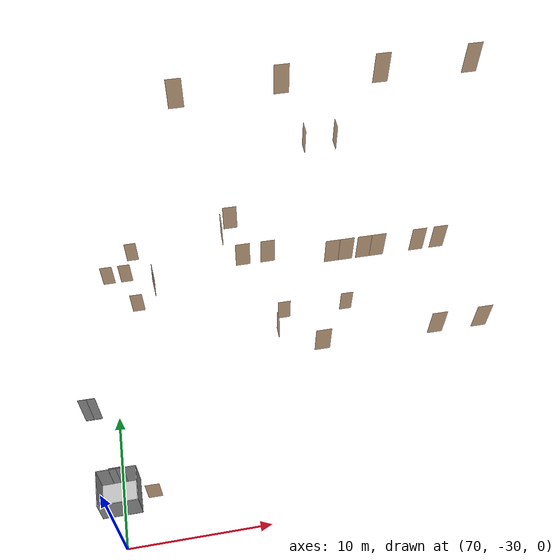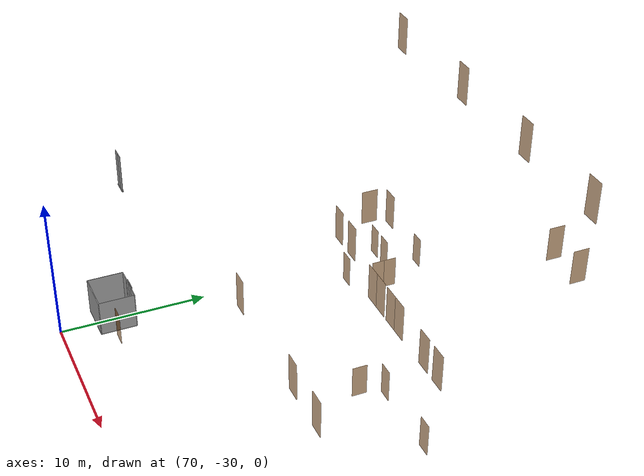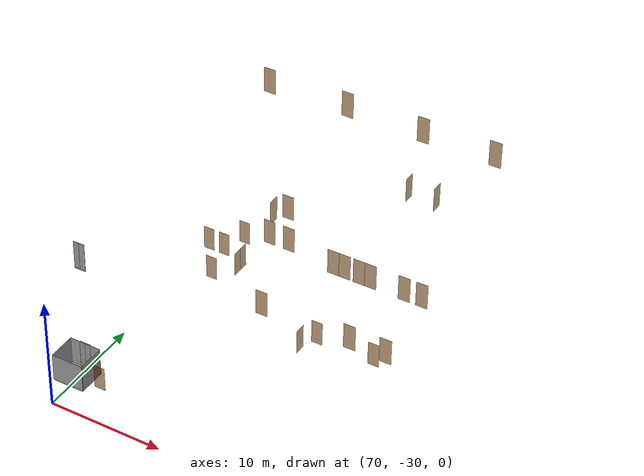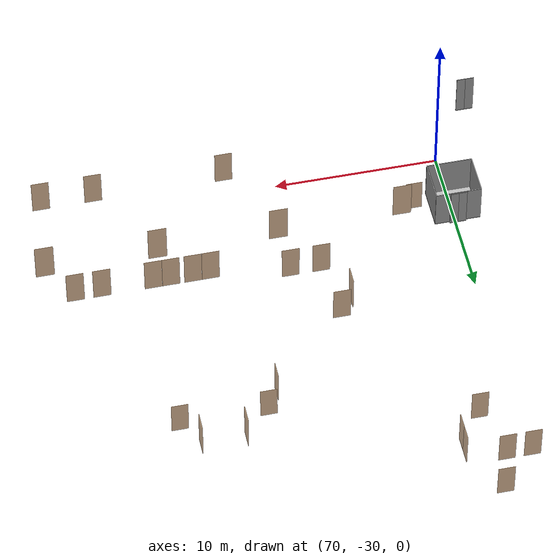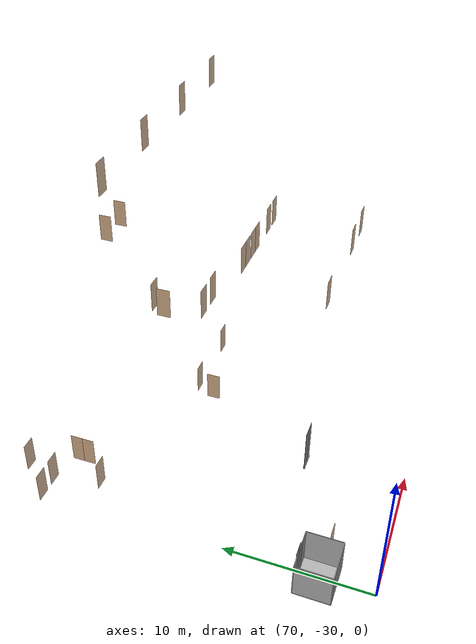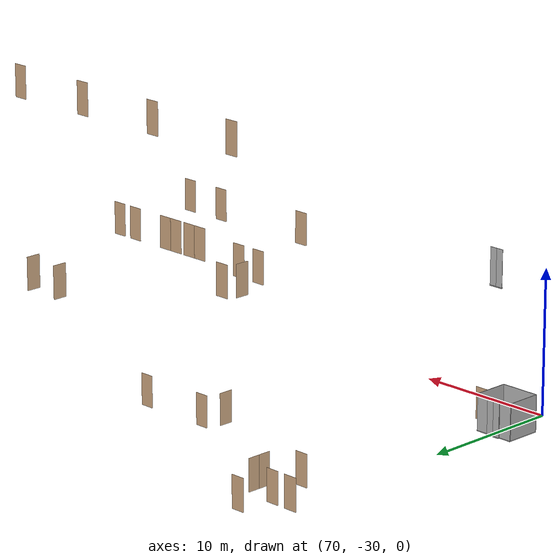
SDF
<sdf version="1.7">
 <world name="world">
  <include><uri>model://sun</uri></include>
  <model name="l1_door10">
   <pose>69.9 -7.0 0.0 0 0 0.0</pose>
   <plugin name="door" filename="libdoor.so">
    <v_max_door>0.5</v_max_door>
    <a_max_door>0.3</a_max_door>
    <a_nom_door>0.15</a_nom_door>
    <dx_min_door>0.01</dx_min_door>
    <f_max_door>500.0</f_max_door>
    <door name="l1_door10" type="SwingDoor" left_joint_name="left_joint" right_joint_name="empty_joint"/>
   </plugin>
   <link name="left">
    <pose>0 0 1.11 0 0 0</pose>
    <visual name="left_visual">
     <geometry><box><size>0.99 0.03 2.2</size></box></geometry>
     <material><ambient>0.5 0.25 0 0.6</ambient><diffuse>0.5 0.25 0 0.6</diffuse></material>
    </visual>
    <collision name="left_collision">
     <geometry><box><size>0.99 0.03 2.2</size></box></geometry>
     <surface><contact><collide_bitmask>0x02</collide_bitmask></contact></surface>
    </collision>
    <inertial>
     <mass>50.0</mass>
     <inertia><ixx>20.17041666666667</ixx><iyy>24.250416666666673</iyy><izz>4.0875</izz></inertia>
    </inertial>
   </link>
   <joint name="left_joint" type="revolute">
    <parent>world</parent>
    <child>left</child>
    <axis><xyz>0 0 1</xyz><limit><lower>-1.57</lower><upper>0</upper></limit></axis>
    <pose>0.5 0 0 0 0 0</pose>
   </joint>
  </model>
  <model name="l1_door9">
   <pose>72.05 -4.75 0.0 0 0 0.0</pose>
   <plugin name="door" filename="libdoor.so">
    <v_max_door>0.5</v_max_door>
    <a_max_door>0.3</a_max_door>
    <a_nom_door>0.15</a_nom_door>
    <dx_min_door>0.01</dx_min_door>
    <f_max_door>500.0</f_max_door>
    <door name="l1_door9" type="SwingDoor" left_joint_name="left_joint" right_joint_name="empty_joint"/>
   </plugin>
   <link name="left">
    <pose>0 0 1.11 0 0 0</pose>
    <visual name="left_visual">
     <geometry><box><size>0.99 0.03 2.2</size></box></geometry>
     <material><ambient>0.5 0.25 0 0.6</ambient><diffuse>0.5 0.25 0 0.6</diffuse></material>
    </visual>
    <collision name="left_collision">
     <geometry><box><size>0.99 0.03 2.2</size></box></geometry>
     <surface><contact><collide_bitmask>0x02</collide_bitmask></contact></surface>
    </collision>
    <inertial>
     <mass>50.0</mass>
     <inertia><ixx>20.17041666666667</ixx><iyy>24.250416666666673</iyy><izz>4.0875</izz></inertia>
    </inertial>
   </link>
   <joint name="left_joint" type="revolute">
    <parent>world</parent>
    <child>left</child>
    <axis><xyz>0 0 1</xyz><limit><lower>-1.57</lower><upper>0</upper></limit></axis>
    <pose>0.5 0 0 0 0 0</pose>
   </joint>
  </model>
  <model name="l1_door8">
   <pose>71.4 -7.0 0.0 0 0 3.141592653589793</pose>
   <plugin name="door" filename="libdoor.so">
    <v_max_door>0.5</v_max_door>
    <a_max_door>0.3</a_max_door>
    <a_nom_door>0.15</a_nom_door>
    <dx_min_door>0.01</dx_min_door>
    <f_max_door>500.0</f_max_door>
    <door name="l1_door8" type="SwingDoor" left_joint_name="empty_joint" right_joint_name="right_joint"/>
   </plugin>
   <link name="right">
    <pose>0 0 1.11 0 0 0</pose>
    <visual name="right_visual">
     <geometry><box><size>0.99 0.03 2.2</size></box></geometry>
     <material><ambient>0.5 0.25 0 0.6</ambient><diffuse>0.5 0.25 0 0.6</diffuse></material>
    </visual>
    <collision name="right_collision">
     <geometry><box><size>0.99 0.03 2.2</size></box></geometry>
     <surface><contact><collide_bitmask>0x02</collide_bitmask></contact></surface>
    </collision>
    <inertial>
     <mass>50.0</mass>
     <inertia><ixx>20.17041666666667</ixx><iyy>24.250416666666673</iyy><izz>4.0875</izz></inertia>
    </inertial>
   </link>
   <joint name="right_joint" type="revolute">
    <parent>world</parent>
    <child>right</child>
    <axis><xyz>0 0 1</xyz><limit><lower>0</lower><upper>1.57</upper></limit></axis>
    <pose>0.5 0 0 0 0 0</pose>
   </joint>
  </model>
  <model name="l1_door6">
   <pose>72.2 -10.25 0.0 0 0 3.141592653589793</pose>
   <plugin name="door" filename="libdoor.so">
    <v_max_door>0.5</v_max_door>
    <a_max_door>0.3</a_max_door>
    <a_nom_door>0.15</a_nom_door>
    <dx_min_door>0.01</dx_min_door>
    <f_max_door>500.0</f_max_door>
    <door name="l1_door6" type="SwingDoor" left_joint_name="empty_joint" right_joint_name="right_joint"/>
   </plugin>
   <link name="right">
    <pose>0 0 1.11 0 0 0</pose>
    <visual name="right_visual">
     <geometry><box><size>0.99 0.03 2.2</size></box></geometry>
     <material><ambient>0.5 0.25 0 0.6</ambient><diffuse>0.5 0.25 0 0.6</diffuse></material>
    </visual>
    <collision name="right_collision">
     <geometry><box><size>0.99 0.03 2.2</size></box></geometry>
     <surface><contact><collide_bitmask>0x02</collide_bitmask></contact></surface>
    </collision>
    <inertial>
     <mass>50.0</mass>
     <inertia><ixx>20.17041666666667</ixx><iyy>24.250416666666673</iyy><izz>4.0875</izz></inertia>
    </inertial>
   </link>
   <joint name="right_joint" type="revolute">
    <parent>world</parent>
    <child>right</child>
    <axis><xyz>0 0 1</xyz><limit><lower>0</lower><upper>1.57</upper></limit></axis>
    <pose>0.5 0 0 0 0 0</pose>
   </joint>
  </model>
  <model name="l1_door7">
   <pose>73.7 -8.125 0.0 0 0 -1.5707963267948966</pose>
   <link name="right">
    <pose>-0.4375 0 1.11 0 0 0</pose>
    <visual name="right_visual">
     <geometry><box><size>0.865 0.03 2.2</size></box></geometry>
     <material><ambient>0.5 0.25 0 0.6</ambient><diffuse>0.5 0.25 0 0.6</diffuse></material>
    </visual>
    <collision name="right_collision">
     <geometry><box><size>0.865 0.03 2.2</size></box></geometry>
     <surface><contact><collide_bitmask>0x02</collide_bitmask></contact></surface>
    </collision>
    <inertial>
     <mass>50.0</mass>
     <inertia><ixx>20.17041666666667</ixx><iyy>23.284270833333338</iyy><izz>3.121354166666667</izz></inertia>
    </inertial>
   </link>
   <joint name="right_joint" type="revolute">
    <parent>world</parent>
    <child>right</child>
    <axis><xyz>0 0 1</xyz><limit><lower>0</lower><upper>1.57</upper></limit></axis>
    <pose>-0.4375 0 0 0 0 0</pose>
   </joint>
   <link name="left">
    <pose>0.4375 0 1.11 0 0 0</pose>
    <visual name="left_visual">
     <geometry><box><size>0.865 0.03 2.2</size></box></geometry>
     <material><ambient>0.5 0.25 0 0.6</ambient><diffuse>0.5 0.25 0 0.6</diffuse></material>
    </visual>
    <collision name="left_collision">
     <geometry><box><size>0.865 0.03 2.2</size></box></geometry>
     <surface><contact><collide_bitmask>0x02</collide_bitmask></contact></surface>
    </collision>
    <inertial>
     <mass>50.0</mass>
     <inertia><ixx>20.17041666666667</ixx><iyy>23.284270833333338</iyy><izz>3.121354166666667</izz></inertia>
    </inertial>
   </link>
   <joint name="left_joint" type="revolute">
    <parent>world</parent>
    <child>left</child>
    <axis><xyz>0 0 1</xyz><limit><lower>-1.57</lower><upper>0</upper></limit></axis>
    <pose>0.4375 0 0 0 0 0</pose>
   </joint>
   <plugin name="door" filename="libdoor.so">
    <v_max_door>0.5</v_max_door>
    <a_max_door>0.3</a_max_door>
    <a_nom_door>0.15</a_nom_door>
    <dx_min_door>0.01</dx_min_door>
    <f_max_door>500.0</f_max_door>
    <door name="l1_door7" type="DoubleSwingDoor" left_joint_name="left_joint" right_joint_name="right_joint"/>
   </plugin>
  </model>
  <model name="exit_1">
   <pose>72.2 -26.6 0.0 0 0 3.141592653589793</pose>
   <plugin name="door" filename="libdoor.so">
    <v_max_door>0.5</v_max_door>
    <a_max_door>0.3</a_max_door>
    <a_nom_door>0.15</a_nom_door>
    <dx_min_door>0.01</dx_min_door>
    <f_max_door>500.0</f_max_door>
    <door name="exit_1" type="SwingDoor" left_joint_name="left_joint" right_joint_name="empty_joint"/>
   </plugin>
   <link name="left">
    <pose>0 0 1.11 0 0 0</pose>
    <visual name="left_visual">
     <geometry><box><size>0.99 0.03 2.2</size></box></geometry>
     <material><ambient>0.5 0.25 0 0.6</ambient><diffuse>0.5 0.25 0 0.6</diffuse></material>
    </visual>
    <collision name="left_collision">
     <geometry><box><size>0.99 0.03 2.2</size></box></geometry>
     <surface><contact><collide_bitmask>0x02</collide_bitmask></contact></surface>
    </collision>
    <inertial>
     <mass>50.0</mass>
     <inertia><ixx>20.17041666666667</ixx><iyy>24.250416666666673</iyy><izz>4.0875</izz></inertia>
    </inertial>
   </link>
   <joint name="left_joint" type="revolute">
    <parent>world</parent>
    <child>left</child>
    <axis><xyz>0 0 1</xyz><limit><lower>-1.57</lower><upper>0</upper></limit></axis>
    <pose>0.5 0 0 0 0 0</pose>
   </joint>
  </model>
  <model name="restroom_2">
   <pose>84.0 -13.0 0.0 0 0 0.0</pose>
   <plugin name="door" filename="libdoor.so">
    <v_max_door>0.5</v_max_door>
    <a_max_door>0.3</a_max_door>
    <a_nom_door>0.15</a_nom_door>
    <dx_min_door>0.01</dx_min_door>
    <f_max_door>500.0</f_max_door>
    <door name="restroom_2" type="SwingDoor" left_joint_name="left_joint" right_joint_name="empty_joint"/>
   </plugin>
   <link name="left">
    <pose>0 0 1.11 0 0 0</pose>
    <visual name="left_visual">
     <geometry><box><size>0.99 0.03 2.2</size></box></geometry>
     <material><ambient>0.5 0.25 0 0.6</ambient><diffuse>0.5 0.25 0 0.6</diffuse></material>
    </visual>
    <collision name="left_collision">
     <geometry><box><size>0.99 0.03 2.2</size></box></geometry>
     <surface><contact><collide_bitmask>0x02</collide_bitmask></contact></surface>
    </collision>
    <inertial>
     <mass>50.0</mass>
     <inertia><ixx>20.17041666666667</ixx><iyy>24.250416666666673</iyy><izz>4.0875</izz></inertia>
    </inertial>
   </link>
   <joint name="left_joint" type="revolute">
    <parent>world</parent>
    <child>left</child>
    <axis><xyz>0 0 1</xyz><limit><lower>-1.57</lower><upper>0</upper></limit></axis>
    <pose>0.5 0 0 0 0 0</pose>
   </joint>
  </model>
  <model name="restroom_3">
   <pose>83.25 -14.4 0.0 0 0 -1.5707963267948966</pose>
   <plugin name="door" filename="libdoor.so">
    <v_max_door>0.5</v_max_door>
    <a_max_door>0.3</a_max_door>
    <a_nom_door>0.15</a_nom_door>
    <dx_min_door>0.01</dx_min_door>
    <f_max_door>500.0</f_max_door>
    <door name="restroom_3" type="SwingDoor" left_joint_name="left_joint" right_joint_name="empty_joint"/>
   </plugin>
   <link name="left">
    <pose>0 0 1.11 0 0 0</pose>
    <visual name="left_visual">
     <geometry><box><size>0.99 0.03 2.2</size></box></geometry>
     <material><ambient>0.5 0.25 0 0.6</ambient><diffuse>0.5 0.25 0 0.6</diffuse></material>
    </visual>
    <collision name="left_collision">
     <geometry><box><size>0.99 0.03 2.2</size></box></geometry>
     <surface><contact><collide_bitmask>0x02</collide_bitmask></contact></surface>
    </collision>
    <inertial>
     <mass>50.0</mass>
     <inertia><ixx>20.17041666666667</ixx><iyy>24.250416666666673</iyy><izz>4.0875</izz></inertia>
    </inertial>
   </link>
   <joint name="left_joint" type="revolute">
    <parent>world</parent>
    <child>left</child>
    <axis><xyz>0 0 1</xyz><limit><lower>-1.57</lower><upper>0</upper></limit></axis>
    <pose>0.5 0 0 0 0 0</pose>
   </joint>
  </model>
  <model name="restroom_1">
   <pose>89.2 -13.0 0.0 0 0 0.0</pose>
   <plugin name="door" filename="libdoor.so">
    <v_max_door>0.5</v_max_door>
    <a_max_door>0.3</a_max_door>
    <a_nom_door>0.15</a_nom_door>
    <dx_min_door>0.01</dx_min_door>
    <f_max_door>500.0</f_max_door>
    <door name="restroom_1" type="SwingDoor" left_joint_name="left_joint" right_joint_name="empty_joint"/>
   </plugin>
   <link name="left">
    <pose>0 0 1.11 0 0 0</pose>
    <visual name="left_visual">
     <geometry><box><size>0.99 0.03 2.2</size></box></geometry>
     <material><ambient>0.5 0.25 0 0.6</ambient><diffuse>0.5 0.25 0 0.6</diffuse></material>
    </visual>
    <collision name="left_collision">
     <geometry><box><size>0.99 0.03 2.2</size></box></geometry>
     <surface><contact><collide_bitmask>0x02</collide_bitmask></contact></surface>
    </collision>
    <inertial>
     <mass>50.0</mass>
     <inertia><ixx>20.17041666666667</ixx><iyy>24.250416666666673</iyy><izz>4.0875</izz></inertia>
    </inertial>
   </link>
   <joint name="left_joint" type="revolute">
    <parent>world</parent>
    <child>left</child>
    <axis><xyz>0 0 1</xyz><limit><lower>-1.57</lower><upper>0</upper></limit></axis>
    <pose>0.5 0 0 0 0 0</pose>
   </joint>
  </model>
  <model name="conf_restroom_door0">
   <pose>82.35 -14.75 10.0 0 0 0.0</pose>
   <plugin name="door" filename="libdoor.so">
    <v_max_door>0.5</v_max_door>
    <a_max_door>0.3</a_max_door>
    <a_nom_door>0.15</a_nom_door>
    <dx_min_door>0.01</dx_min_door>
    <f_max_door>500.0</f_max_door>
    <door name="conf_restroom_door0" type="SwingDoor" left_joint_name="empty_joint" right_joint_name="right_joint"/>
   </plugin>
   <link name="right">
    <pose>0 0 1.11 0 0 0</pose>
    <visual name="right_visual">
     <geometry><box><size>0.99 0.03 2.2</size></box></geometry>
     <material><ambient>0.5 0.25 0 0.6</ambient><diffuse>0.5 0.25 0 0.6</diffuse></material>
    </visual>
    <collision name="right_collision">
     <geometry><box><size>0.99 0.03 2.2</size></box></geometry>
     <surface><contact><collide_bitmask>0x02</collide_bitmask></contact></surface>
    </collision>
    <inertial>
     <mass>50.0</mass>
     <inertia><ixx>20.17041666666667</ixx><iyy>24.250416666666673</iyy><izz>4.0875</izz></inertia>
    </inertial>
   </link>
   <joint name="right_joint" type="revolute">
    <parent>world</parent>
    <child>right</child>
    <axis><xyz>0 0 1</xyz><limit><lower>0</lower><upper>1.57</upper></limit></axis>
    <pose>0.5 0 0 0 0 0</pose>
   </joint>
  </model>
  <model name="conf0_door0">
   <pose>87.25 -15.5 10.0 0 0 3.141592653589793</pose>
   <link name="right">
    <pose>-0.5 0 1.11 0 0 0</pose>
    <visual name="right_visual">
     <geometry><box><size>0.99 0.03 2.2</size></box></geometry>
     <material><ambient>0.5 0.25 0 0.6</ambient><diffuse>0.5 0.25 0 0.6</diffuse></material>
    </visual>
    <collision name="right_collision">
     <geometry><box><size>0.99 0.03 2.2</size></box></geometry>
     <surface><contact><collide_bitmask>0x02</collide_bitmask></contact></surface>
    </collision>
    <inertial>
     <mass>50.0</mass>
     <inertia><ixx>20.17041666666667</ixx><iyy>24.250416666666673</iyy><izz>4.0875</izz></inertia>
    </inertial>
   </link>
   <joint name="right_joint" type="revolute">
    <parent>world</parent>
    <child>right</child>
    <axis><xyz>0 0 1</xyz><limit><lower>0</lower><upper>1.57</upper></limit></axis>
    <pose>-0.5 0 0 0 0 0</pose>
   </joint>
   <link name="left">
    <pose>0.5 0 1.11 0 0 0</pose>
    <visual name="left_visual">
     <geometry><box><size>0.99 0.03 2.2</size></box></geometry>
     <material><ambient>0.5 0.25 0 0.6</ambient><diffuse>0.5 0.25 0 0.6</diffuse></material>
    </visual>
    <collision name="left_collision">
     <geometry><box><size>0.99 0.03 2.2</size></box></geometry>
     <surface><contact><collide_bitmask>0x02</collide_bitmask></contact></surface>
    </collision>
    <inertial>
     <mass>50.0</mass>
     <inertia><ixx>20.17041666666667</ixx><iyy>24.250416666666673</iyy><izz>4.0875</izz></inertia>
    </inertial>
   </link>
   <joint name="left_joint" type="revolute">
    <parent>world</parent>
    <child>left</child>
    <axis><xyz>0 0 1</xyz><limit><lower>-1.57</lower><upper>0</upper></limit></axis>
    <pose>0.5 0 0 0 0 0</pose>
   </joint>
   <plugin name="door" filename="libdoor.so">
    <v_max_door>0.5</v_max_door>
    <a_max_door>0.3</a_max_door>
    <a_nom_door>0.15</a_nom_door>
    <dx_min_door>0.01</dx_min_door>
    <f_max_door>500.0</f_max_door>
    <door name="conf0_door0" type="DoubleSwingDoor" left_joint_name="left_joint" right_joint_name="right_joint"/>
   </plugin>
  </model>
  <model name="conf0_door1">
   <pose>89.5 -15.5 10.0 0 0 3.141592653589793</pose>
   <link name="right">
    <pose>-0.5 0 1.11 0 0 0</pose>
    <visual name="right_visual">
     <geometry><box><size>0.99 0.03 2.2</size></box></geometry>
     <material><ambient>0.5 0.25 0 0.6</ambient><diffuse>0.5 0.25 0 0.6</diffuse></material>
    </visual>
    <collision name="right_collision">
     <geometry><box><size>0.99 0.03 2.2</size></box></geometry>
     <surface><contact><collide_bitmask>0x02</collide_bitmask></contact></surface>
    </collision>
    <inertial>
     <mass>50.0</mass>
     <inertia><ixx>20.17041666666667</ixx><iyy>24.250416666666673</iyy><izz>4.0875</izz></inertia>
    </inertial>
   </link>
   <joint name="right_joint" type="revolute">
    <parent>world</parent>
    <child>right</child>
    <axis><xyz>0 0 1</xyz><limit><lower>0</lower><upper>1.57</upper></limit></axis>
    <pose>-0.5 0 0 0 0 0</pose>
   </joint>
   <link name="left">
    <pose>0.5 0 1.11 0 0 0</pose>
    <visual name="left_visual">
     <geometry><box><size>0.99 0.03 2.2</size></box></geometry>
     <material><ambient>0.5 0.25 0 0.6</ambient><diffuse>0.5 0.25 0 0.6</diffuse></material>
    </visual>
    <collision name="left_collision">
     <geometry><box><size>0.99 0.03 2.2</size></box></geometry>
     <surface><contact><collide_bitmask>0x02</collide_bitmask></contact></surface>
    </collision>
    <inertial>
     <mass>50.0</mass>
     <inertia><ixx>20.17041666666667</ixx><iyy>24.250416666666673</iyy><izz>4.0875</izz></inertia>
    </inertial>
   </link>
   <joint name="left_joint" type="revolute">
    <parent>world</parent>
    <child>left</child>
    <axis><xyz>0 0 1</xyz><limit><lower>-1.57</lower><upper>0</upper></limit></axis>
    <pose>0.5 0 0 0 0 0</pose>
   </joint>
   <plugin name="door" filename="libdoor.so">
    <v_max_door>0.5</v_max_door>
    <a_max_door>0.3</a_max_door>
    <a_nom_door>0.15</a_nom_door>
    <dx_min_door>0.01</dx_min_door>
    <f_max_door>500.0</f_max_door>
    <door name="conf0_door1" type="DoubleSwingDoor" left_joint_name="left_joint" right_joint_name="right_joint"/>
   </plugin>
  </model>
  <model name="meeting1_side">
   <pose>92.9 -15.5 10.0 0 0 0.0</pose>
   <plugin name="door" filename="libdoor.so">
    <v_max_door>0.5</v_max_door>
    <a_max_door>0.3</a_max_door>
    <a_nom_door>0.15</a_nom_door>
    <dx_min_door>0.01</dx_min_door>
    <f_max_door>500.0</f_max_door>
    <door name="meeting1_side" type="SwingDoor" left_joint_name="left_joint" right_joint_name="empty_joint"/>
   </plugin>
   <link name="left">
    <pose>0 0 1.11 0 0 0</pose>
    <visual name="left_visual">
     <geometry><box><size>0.99 0.03 2.2</size></box></geometry>
     <material><ambient>0.5 0.25 0 0.6</ambient><diffuse>0.5 0.25 0 0.6</diffuse></material>
    </visual>
    <collision name="left_collision">
     <geometry><box><size>0.99 0.03 2.2</size></box></geometry>
     <surface><contact><collide_bitmask>0x02</collide_bitmask></contact></surface>
    </collision>
    <inertial>
     <mass>50.0</mass>
     <inertia><ixx>20.17041666666667</ixx><iyy>24.250416666666673</iyy><izz>4.0875</izz></inertia>
    </inertial>
   </link>
   <joint name="left_joint" type="revolute">
    <parent>world</parent>
    <child>left</child>
    <axis><xyz>0 0 1</xyz><limit><lower>-1.57</lower><upper>0</upper></limit></axis>
    <pose>0.5 0 0 0 0 0</pose>
   </joint>
  </model>
  <model name="conf0_back0">
   <pose>87.1 -4.0 10.0 0 0 -1.5707963267948966</pose>
   <plugin name="door" filename="libdoor.so">
    <v_max_door>0.5</v_max_door>
    <a_max_door>0.3</a_max_door>
    <a_nom_door>0.15</a_nom_door>
    <dx_min_door>0.01</dx_min_door>
    <f_max_door>500.0</f_max_door>
    <door name="conf0_back0" type="SwingDoor" left_joint_name="left_joint" right_joint_name="empty_joint"/>
   </plugin>
   <link name="left">
    <pose>0 0 1.11 0 0 0</pose>
    <visual name="left_visual">
     <geometry><box><size>0.99 0.03 2.2</size></box></geometry>
     <material><ambient>0.5 0.25 0 0.6</ambient><diffuse>0.5 0.25 0 0.6</diffuse></material>
    </visual>
    <collision name="left_collision">
     <geometry><box><size>0.99 0.03 2.2</size></box></geometry>
     <surface><contact><collide_bitmask>0x02</collide_bitmask></contact></surface>
    </collision>
    <inertial>
     <mass>50.0</mass>
     <inertia><ixx>20.17041666666667</ixx><iyy>24.250416666666673</iyy><izz>4.0875</izz></inertia>
    </inertial>
   </link>
   <joint name="left_joint" type="revolute">
    <parent>world</parent>
    <child>left</child>
    <axis><xyz>0 0 1</xyz><limit><lower>-1.57</lower><upper>0</upper></limit></axis>
    <pose>0.5 0 0 0 0 0</pose>
   </joint>
  </model>
  <model name="conf0_back1">
   <pose>89.6 -4.0 10.0 0 0 -1.5707963267948966</pose>
   <plugin name="door" filename="libdoor.so">
    <v_max_door>0.5</v_max_door>
    <a_max_door>0.3</a_max_door>
    <a_nom_door>0.15</a_nom_door>
    <dx_min_door>0.01</dx_min_door>
    <f_max_door>500.0</f_max_door>
    <door name="conf0_back1" type="SwingDoor" left_joint_name="left_joint" right_joint_name="empty_joint"/>
   </plugin>
   <link name="left">
    <pose>0 0 1.11 0 0 0</pose>
    <visual name="left_visual">
     <geometry><box><size>0.99 0.03 2.2</size></box></geometry>
     <material><ambient>0.5 0.25 0 0.6</ambient><diffuse>0.5 0.25 0 0.6</diffuse></material>
    </visual>
    <collision name="left_collision">
     <geometry><box><size>0.99 0.03 2.2</size></box></geometry>
     <surface><contact><collide_bitmask>0x02</collide_bitmask></contact></surface>
    </collision>
    <inertial>
     <mass>50.0</mass>
     <inertia><ixx>20.17041666666667</ixx><iyy>24.250416666666673</iyy><izz>4.0875</izz></inertia>
    </inertial>
   </link>
   <joint name="left_joint" type="revolute">
    <parent>world</parent>
    <child>left</child>
    <axis><xyz>0 0 1</xyz><limit><lower>-1.57</lower><upper>0</upper></limit></axis>
    <pose>0.5 0 0 0 0 0</pose>
   </joint>
  </model>
  <model name="conf1_side">
   <pose>94.4 -15.5 10.0 0 0 3.141592653589793</pose>
   <plugin name="door" filename="libdoor.so">
    <v_max_door>0.5</v_max_door>
    <a_max_door>0.3</a_max_door>
    <a_nom_door>0.15</a_nom_door>
    <dx_min_door>0.01</dx_min_door>
    <f_max_door>500.0</f_max_door>
    <door name="conf1_side" type="SwingDoor" left_joint_name="empty_joint" right_joint_name="right_joint"/>
   </plugin>
   <link name="right">
    <pose>0 0 1.11 0 0 0</pose>
    <visual name="right_visual">
     <geometry><box><size>0.99 0.03 2.2</size></box></geometry>
     <material><ambient>0.5 0.25 0 0.6</ambient><diffuse>0.5 0.25 0 0.6</diffuse></material>
    </visual>
    <collision name="right_collision">
     <geometry><box><size>0.99 0.03 2.2</size></box></geometry>
     <surface><contact><collide_bitmask>0x02</collide_bitmask></contact></surface>
    </collision>
    <inertial>
     <mass>50.0</mass>
     <inertia><ixx>20.17041666666667</ixx><iyy>24.250416666666673</iyy><izz>4.0875</izz></inertia>
    </inertial>
   </link>
   <joint name="right_joint" type="revolute">
    <parent>world</parent>
    <child>right</child>
    <axis><xyz>0 0 1</xyz><limit><lower>0</lower><upper>1.57</upper></limit></axis>
    <pose>0.5 0 0 0 0 0</pose>
   </joint>
  </model>
  <model name="conf_meeting0_door0">
   <pose>84.6 -22.5 10.0 0 0 0.0</pose>
   <plugin name="door" filename="libdoor.so">
    <v_max_door>0.5</v_max_door>
    <a_max_door>0.3</a_max_door>
    <a_nom_door>0.15</a_nom_door>
    <dx_min_door>0.01</dx_min_door>
    <f_max_door>500.0</f_max_door>
    <door name="conf_meeting0_door0" type="SwingDoor" left_joint_name="left_joint" right_joint_name="empty_joint"/>
   </plugin>
   <link name="left">
    <pose>0 0 1.11 0 0 0</pose>
    <visual name="left_visual">
     <geometry><box><size>0.99 0.03 2.2</size></box></geometry>
     <material><ambient>0.5 0.25 0 0.6</ambient><diffuse>0.5 0.25 0 0.6</diffuse></material>
    </visual>
    <collision name="left_collision">
     <geometry><box><size>0.99 0.03 2.2</size></box></geometry>
     <surface><contact><collide_bitmask>0x02</collide_bitmask></contact></surface>
    </collision>
    <inertial>
     <mass>50.0</mass>
     <inertia><ixx>20.17041666666667</ixx><iyy>24.250416666666673</iyy><izz>4.0875</izz></inertia>
    </inertial>
   </link>
   <joint name="left_joint" type="revolute">
    <parent>world</parent>
    <child>left</child>
    <axis><xyz>0 0 1</xyz><limit><lower>-1.57</lower><upper>0</upper></limit></axis>
    <pose>0.5 0 0 0 0 0</pose>
   </joint>
  </model>
  <model name="conf_meeting0_door1">
   <pose>92.15 -22.5 10.0 0 0 3.141592653589793</pose>
   <plugin name="door" filename="libdoor.so">
    <v_max_door>0.5</v_max_door>
    <a_max_door>0.3</a_max_door>
    <a_nom_door>0.15</a_nom_door>
    <dx_min_door>0.01</dx_min_door>
    <f_max_door>500.0</f_max_door>
    <door name="conf_meeting0_door1" type="SwingDoor" left_joint_name="empty_joint" right_joint_name="right_joint"/>
   </plugin>
   <link name="right">
    <pose>0 0 1.11 0 0 0</pose>
    <visual name="right_visual">
     <geometry><box><size>0.99 0.03 2.2</size></box></geometry>
     <material><ambient>0.5 0.25 0 0.6</ambient><diffuse>0.5 0.25 0 0.6</diffuse></material>
    </visual>
    <collision name="right_collision">
     <geometry><box><size>0.99 0.03 2.2</size></box></geometry>
     <surface><contact><collide_bitmask>0x02</collide_bitmask></contact></surface>
    </collision>
    <inertial>
     <mass>50.0</mass>
     <inertia><ixx>20.17041666666667</ixx><iyy>24.250416666666673</iyy><izz>4.0875</izz></inertia>
    </inertial>
   </link>
   <joint name="right_joint" type="revolute">
    <parent>world</parent>
    <child>right</child>
    <axis><xyz>0 0 1</xyz><limit><lower>0</lower><upper>1.57</upper></limit></axis>
    <pose>0.5 0 0 0 0 0</pose>
   </joint>
  </model>
  <model name="conf_meeting1_door0">
   <pose>95.15 -22.5 10.0 0 0 0.0</pose>
   <plugin name="door" filename="libdoor.so">
    <v_max_door>0.5</v_max_door>
    <a_max_door>0.3</a_max_door>
    <a_nom_door>0.15</a_nom_door>
    <dx_min_door>0.01</dx_min_door>
    <f_max_door>500.0</f_max_door>
    <door name="conf_meeting1_door0" type="SwingDoor" left_joint_name="left_joint" right_joint_name="empty_joint"/>
   </plugin>
   <link name="left">
    <pose>0 0 1.11 0 0 0</pose>
    <visual name="left_visual">
     <geometry><box><size>0.99 0.03 2.2</size></box></geometry>
     <material><ambient>0.5 0.25 0 0.6</ambient><diffuse>0.5 0.25 0 0.6</diffuse></material>
    </visual>
    <collision name="left_collision">
     <geometry><box><size>0.99 0.03 2.2</size></box></geometry>
     <surface><contact><collide_bitmask>0x02</collide_bitmask></contact></surface>
    </collision>
    <inertial>
     <mass>50.0</mass>
     <inertia><ixx>20.17041666666667</ixx><iyy>24.250416666666673</iyy><izz>4.0875</izz></inertia>
    </inertial>
   </link>
   <joint name="left_joint" type="revolute">
    <parent>world</parent>
    <child>left</child>
    <axis><xyz>0 0 1</xyz><limit><lower>-1.57</lower><upper>0</upper></limit></axis>
    <pose>0.5 0 0 0 0 0</pose>
   </joint>
  </model>
  <model name="conf_restroom_door1">
   <pose>80.6 -14.75 10.0 0 0 0.0</pose>
   <plugin name="door" filename="libdoor.so">
    <v_max_door>0.5</v_max_door>
    <a_max_door>0.3</a_max_door>
    <a_nom_door>0.15</a_nom_door>
    <dx_min_door>0.01</dx_min_door>
    <f_max_door>500.0</f_max_door>
    <door name="conf_restroom_door1" type="SwingDoor" left_joint_name="empty_joint" right_joint_name="right_joint"/>
   </plugin>
   <link name="right">
    <pose>0 0 1.11 0 0 0</pose>
    <visual name="right_visual">
     <geometry><box><size>0.99 0.03 2.2</size></box></geometry>
     <material><ambient>0.5 0.25 0 0.6</ambient><diffuse>0.5 0.25 0 0.6</diffuse></material>
    </visual>
    <collision name="right_collision">
     <geometry><box><size>0.99 0.03 2.2</size></box></geometry>
     <surface><contact><collide_bitmask>0x02</collide_bitmask></contact></surface>
    </collision>
    <inertial>
     <mass>50.0</mass>
     <inertia><ixx>20.17041666666667</ixx><iyy>24.250416666666673</iyy><izz>4.0875</izz></inertia>
    </inertial>
   </link>
   <joint name="right_joint" type="revolute">
    <parent>world</parent>
    <child>right</child>
    <axis><xyz>0 0 1</xyz><limit><lower>0</lower><upper>1.57</upper></limit></axis>
    <pose>0.5 0 0 0 0 0</pose>
   </joint>
  </model>
  <model name="conf_restroom_door2">
   <pose>79.45 -12.25 10.0 0 0 -1.5707963267948966</pose>
   <plugin name="door" filename="libdoor.so">
    <v_max_door>0.5</v_max_door>
    <a_max_door>0.3</a_max_door>
    <a_nom_door>0.15</a_nom_door>
    <dx_min_door>0.01</dx_min_door>
    <f_max_door>500.0</f_max_door>
    <door name="conf_restroom_door2" type="SwingDoor" left_joint_name="empty_joint" right_joint_name="right_joint"/>
   </plugin>
   <link name="right">
    <pose>0 0 1.11 0 0 0</pose>
    <visual name="right_visual">
     <geometry><box><size>0.99 0.03 2.2</size></box></geometry>
     <material><ambient>0.5 0.25 0 0.6</ambient><diffuse>0.5 0.25 0 0.6</diffuse></material>
    </visual>
    <collision name="right_collision">
     <geometry><box><size>0.99 0.03 2.2</size></box></geometry>
     <surface><contact><collide_bitmask>0x02</collide_bitmask></contact></surface>
    </collision>
    <inertial>
     <mass>50.0</mass>
     <inertia><ixx>20.17041666666667</ixx><iyy>24.250416666666673</iyy><izz>4.0875</izz></inertia>
    </inertial>
   </link>
   <joint name="right_joint" type="revolute">
    <parent>world</parent>
    <child>right</child>
    <axis><xyz>0 0 1</xyz><limit><lower>0</lower><upper>1.57</upper></limit></axis>
    <pose>0.5 0 0 0 0 0</pose>
   </joint>
  </model>
  <model name="conf_restroom_door3">
   <pose>80.2 -11.25 10.0 0 0 3.141592653589793</pose>
   <plugin name="door" filename="libdoor.so">
    <v_max_door>0.5</v_max_door>
    <a_max_door>0.3</a_max_door>
    <a_nom_door>0.15</a_nom_door>
    <dx_min_door>0.01</dx_min_door>
    <f_max_door>500.0</f_max_door>
    <door name="conf_restroom_door3" type="SwingDoor" left_joint_name="empty_joint" right_joint_name="right_joint"/>
   </plugin>
   <link name="right">
    <pose>0 0 1.11 0 0 0</pose>
    <visual name="right_visual">
     <geometry><box><size>0.99 0.03 2.2</size></box></geometry>
     <material><ambient>0.5 0.25 0 0.6</ambient><diffuse>0.5 0.25 0 0.6</diffuse></material>
    </visual>
    <collision name="right_collision">
     <geometry><box><size>0.99 0.03 2.2</size></box></geometry>
     <surface><contact><collide_bitmask>0x02</collide_bitmask></contact></surface>
    </collision>
    <inertial>
     <mass>50.0</mass>
     <inertia><ixx>20.17041666666667</ixx><iyy>24.250416666666673</iyy><izz>4.0875</izz></inertia>
    </inertial>
   </link>
   <joint name="right_joint" type="revolute">
    <parent>world</parent>
    <child>right</child>
    <axis><xyz>0 0 1</xyz><limit><lower>0</lower><upper>1.57</upper></limit></axis>
    <pose>0.5 0 0 0 0 0</pose>
   </joint>
  </model>
  <model name="room24_door">
   <pose>77.45 -9.5 20.0 0 0 3.141592653589793</pose>
   <plugin name="door" filename="libdoor.so">
    <v_max_door>0.5</v_max_door>
    <a_max_door>0.3</a_max_door>
    <a_nom_door>0.15</a_nom_door>
    <dx_min_door>0.01</dx_min_door>
    <f_max_door>500.0</f_max_door>
    <door name="room24_door" type="SwingDoor" left_joint_name="left_joint" right_joint_name="empty_joint"/>
   </plugin>
   <link name="left">
    <pose>0 0 1.11 0 0 0</pose>
    <visual name="left_visual">
     <geometry><box><size>0.99 0.03 2.2</size></box></geometry>
     <material><ambient>0.5 0.25 0 0.6</ambient><diffuse>0.5 0.25 0 0.6</diffuse></material>
    </visual>
    <collision name="left_collision">
     <geometry><box><size>0.99 0.03 2.2</size></box></geometry>
     <surface><contact><collide_bitmask>0x02</collide_bitmask></contact></surface>
    </collision>
    <inertial>
     <mass>50.0</mass>
     <inertia><ixx>20.17041666666667</ixx><iyy>24.250416666666673</iyy><izz>4.0875</izz></inertia>
    </inertial>
   </link>
   <joint name="left_joint" type="revolute">
    <parent>world</parent>
    <child>left</child>
    <axis><xyz>0 0 1</xyz><limit><lower>-1.57</lower><upper>0</upper></limit></axis>
    <pose>0.5 0 0 0 0 0</pose>
   </joint>
  </model>
  <model name="room25_door">
   <pose>84.2 -9.25 20.0 0 0 0.0</pose>
   <plugin name="door" filename="libdoor.so">
    <v_max_door>0.5</v_max_door>
    <a_max_door>0.3</a_max_door>
    <a_nom_door>0.15</a_nom_door>
    <dx_min_door>0.01</dx_min_door>
    <f_max_door>500.0</f_max_door>
    <door name="room25_door" type="SwingDoor" left_joint_name="empty_joint" right_joint_name="right_joint"/>
   </plugin>
   <link name="right">
    <pose>0 0 1.11 0 0 0</pose>
    <visual name="right_visual">
     <geometry><box><size>0.99 0.03 2.2</size></box></geometry>
     <material><ambient>0.5 0.25 0 0.6</ambient><diffuse>0.5 0.25 0 0.6</diffuse></material>
    </visual>
    <collision name="right_collision">
     <geometry><box><size>0.99 0.03 2.2</size></box></geometry>
     <surface><contact><collide_bitmask>0x02</collide_bitmask></contact></surface>
    </collision>
    <inertial>
     <mass>50.0</mass>
     <inertia><ixx>20.17041666666667</ixx><iyy>24.250416666666673</iyy><izz>4.0875</izz></inertia>
    </inertial>
   </link>
   <joint name="right_joint" type="revolute">
    <parent>world</parent>
    <child>right</child>
    <axis><xyz>0 0 1</xyz><limit><lower>0</lower><upper>1.57</upper></limit></axis>
    <pose>0.5 0 0 0 0 0</pose>
   </joint>
  </model>
  <model name="room26_door">
   <pose>90.7 -9.25 20.0 0 0 3.141592653589793</pose>
   <plugin name="door" filename="libdoor.so">
    <v_max_door>0.5</v_max_door>
    <a_max_door>0.3</a_max_door>
    <a_nom_door>0.15</a_nom_door>
    <dx_min_door>0.01</dx_min_door>
    <f_max_door>500.0</f_max_door>
    <door name="room26_door" type="SwingDoor" left_joint_name="left_joint" right_joint_name="empty_joint"/>
   </plugin>
   <link name="left">
    <pose>0 0 1.11 0 0 0</pose>
    <visual name="left_visual">
     <geometry><box><size>0.99 0.03 2.2</size></box></geometry>
     <material><ambient>0.5 0.25 0 0.6</ambient><diffuse>0.5 0.25 0 0.6</diffuse></material>
    </visual>
    <collision name="left_collision">
     <geometry><box><size>0.99 0.03 2.2</size></box></geometry>
     <surface><contact><collide_bitmask>0x02</collide_bitmask></contact></surface>
    </collision>
    <inertial>
     <mass>50.0</mass>
     <inertia><ixx>20.17041666666667</ixx><iyy>24.250416666666673</iyy><izz>4.0875</izz></inertia>
    </inertial>
   </link>
   <joint name="left_joint" type="revolute">
    <parent>world</parent>
    <child>left</child>
    <axis><xyz>0 0 1</xyz><limit><lower>-1.57</lower><upper>0</upper></limit></axis>
    <pose>0.5 0 0 0 0 0</pose>
   </joint>
  </model>
  <model name="room27_door">
   <pose>96.7 -9.25 20.0 0 0 0.0</pose>
   <plugin name="door" filename="libdoor.so">
    <v_max_door>0.5</v_max_door>
    <a_max_door>0.3</a_max_door>
    <a_nom_door>0.15</a_nom_door>
    <dx_min_door>0.01</dx_min_door>
    <f_max_door>500.0</f_max_door>
    <door name="room27_door" type="SwingDoor" left_joint_name="empty_joint" right_joint_name="right_joint"/>
   </plugin>
   <link name="right">
    <pose>0 0 1.11 0 0 0</pose>
    <visual name="right_visual">
     <geometry><box><size>0.99 0.03 2.2</size></box></geometry>
     <material><ambient>0.5 0.25 0 0.6</ambient><diffuse>0.5 0.25 0 0.6</diffuse></material>
    </visual>
    <collision name="right_collision">
     <geometry><box><size>0.99 0.03 2.2</size></box></geometry>
     <surface><contact><collide_bitmask>0x02</collide_bitmask></contact></surface>
    </collision>
    <inertial>
     <mass>50.0</mass>
     <inertia><ixx>20.17041666666667</ixx><iyy>24.250416666666673</iyy><izz>4.0875</izz></inertia>
    </inertial>
   </link>
   <joint name="right_joint" type="revolute">
    <parent>world</parent>
    <child>right</child>
    <axis><xyz>0 0 1</xyz><limit><lower>0</lower><upper>1.57</upper></limit></axis>
    <pose>0.5 0 0 0 0 0</pose>
   </joint>
  </model>
  <model name="ShaftDoor_guest_lift7_L1_door">
   <pose>69.825 -25.025000000000002 0.0 0 0 0.0</pose>
   <link name="right_door">
    <pose>0.25 0 1.25 0 0 0</pose>
    <visual name="right_door_visual">
     <geometry><box><size>0.5 0.03 2.5</size></box></geometry>
     <material>
      <ambient>0.5 0.5 0.5 1</ambient>
      <diffuse>0.7 0.7 0.7 1</diffuse>
      <specular>0.6 0.6 0.6 1</specular>
      <emissive>0.1 0.1 0.1 1</emissive>
     </material>
    </visual>
    <collision name="right_door_collision">
     <geometry><box><size>0.5 0.03 2.5</size></box></geometry>
     <surface><contact><collide_bitmask>0x02</collide_bitmask></contact></surface>
    </collision>
   </link>
   <joint name="right_joint" type="prismatic">
    <parent>world</parent>
    <child>right_door</child>
    <axis><xyz>1 0 0</xyz><limit><lower>0</lower><upper>0.5</upper></limit></axis>
   </joint>
   <link name="left_door">
    <pose>-0.25 0 1.25 0 0 0</pose>
    <visual name="left_door_visual">
     <geometry><box><size>0.5 0.03 2.5</size></box></geometry>
     <material>
      <ambient>0.5 0.5 0.5 1</ambient>
      <diffuse>0.7 0.7 0.7 1</diffuse>
      <specular>0.6 0.6 0.6 1</specular>
      <emissive>0.1 0.1 0.1 1</emissive>
     </material>
    </visual>
    <collision name="left_door_collision">
     <geometry><box><size>0.5 0.03 2.5</size></box></geometry>
     <surface><contact><collide_bitmask>0x02</collide_bitmask></contact></surface>
    </collision>
   </link>
   <joint name="left_joint" type="prismatic">
    <parent>world</parent>
    <child>left_door</child>
    <axis><xyz>1 0 0</xyz><limit><lower>-0.5</lower><upper>0</upper></limit></axis>
   </joint>
   <link name="ramp">
    <pose>0 0 -0.025 0 0 0</pose>
    <visual name="ramp_visual">
     <geometry><box><size>1.0 0.1 0.05</size></box></geometry>
     <material>
      <ambient>0.5 0.5 0.5 1</ambient>
      <diffuse>0.7 0.7 0.7 1</diffuse>
      <specular>0.6 0.6 0.6 1</specular>
      <emissive>0.1 0.1 0.1 1</emissive>
     </material>
    </visual>
    <collision name="ramp_collision">
     <geometry><box><size>1.0 0.1 0.05</size></box></geometry>
     <surface><contact><collide_bitmask>0x02</collide_bitmask></contact></surface>
    </collision>
   </link>
   <joint name="ramp_joint" type="fixed"><parent>world</parent><child>ramp</child></joint>
   <plugin name="door" filename="libdoor.so">
    <v_max_door>0.3</v_max_door>
    <a_max_door>0.2</a_max_door>
    <a_nom_door>0.1</a_nom_door>
    <dx_min_door>0.0001</dx_min_door>
    <f_max_door>35.0</f_max_door>
    <door left_joint_name="left_joint" name="ShaftDoor_guest_lift7_L1_door" right_joint_name="right_joint" type="DoubleSlidingDoor"/>
   </plugin>
  </model>
  <model name="ShaftDoor_guest_lift7_L2_door">
   <pose>69.825 -25.025000000000002 10.0 0 0 0.0</pose>
   <link name="right_door">
    <pose>0.25 0 1.25 0 0 0</pose>
    <visual name="right_door_visual">
     <geometry><box><size>0.5 0.03 2.5</size></box></geometry>
     <material>
      <ambient>0.5 0.5 0.5 1</ambient>
      <diffuse>0.7 0.7 0.7 1</diffuse>
      <specular>0.6 0.6 0.6 1</specular>
      <emissive>0.1 0.1 0.1 1</emissive>
     </material>
    </visual>
    <collision name="right_door_collision">
     <geometry><box><size>0.5 0.03 2.5</size></box></geometry>
     <surface><contact><collide_bitmask>0x02</collide_bitmask></contact></surface>
    </collision>
   </link>
   <joint name="right_joint" type="prismatic">
    <parent>world</parent>
    <child>right_door</child>
    <axis><xyz>1 0 0</xyz><limit><lower>0</lower><upper>0.5</upper></limit></axis>
   </joint>
   <link name="left_door">
    <pose>-0.25 0 1.25 0 0 0</pose>
    <visual name="left_door_visual">
     <geometry><box><size>0.5 0.03 2.5</size></box></geometry>
     <material>
      <ambient>0.5 0.5 0.5 1</ambient>
      <diffuse>0.7 0.7 0.7 1</diffuse>
      <specular>0.6 0.6 0.6 1</specular>
      <emissive>0.1 0.1 0.1 1</emissive>
     </material>
    </visual>
    <collision name="left_door_collision">
     <geometry><box><size>0.5 0.03 2.5</size></box></geometry>
     <surface><contact><collide_bitmask>0x02</collide_bitmask></contact></surface>
    </collision>
   </link>
   <joint name="left_joint" type="prismatic">
    <parent>world</parent>
    <child>left_door</child>
    <axis><xyz>1 0 0</xyz><limit><lower>-0.5</lower><upper>0</upper></limit></axis>
   </joint>
   <link name="ramp">
    <pose>0 0 -0.025 0 0 0</pose>
    <visual name="ramp_visual">
     <geometry><box><size>1.0 0.1 0.05</size></box></geometry>
     <material>
      <ambient>0.5 0.5 0.5 1</ambient>
      <diffuse>0.7 0.7 0.7 1</diffuse>
      <specular>0.6 0.6 0.6 1</specular>
      <emissive>0.1 0.1 0.1 1</emissive>
     </material>
    </visual>
    <collision name="ramp_collision">
     <geometry><box><size>1.0 0.1 0.05</size></box></geometry>
     <surface><contact><collide_bitmask>0x02</collide_bitmask></contact></surface>
    </collision>
   </link>
   <joint name="ramp_joint" type="fixed"><parent>world</parent><child>ramp</child></joint>
   <plugin name="door" filename="libdoor.so">
    <v_max_door>0.3</v_max_door>
    <a_max_door>0.2</a_max_door>
    <a_nom_door>0.1</a_nom_door>
    <dx_min_door>0.0001</dx_min_door>
    <f_max_door>35.0</f_max_door>
    <door left_joint_name="left_joint" name="ShaftDoor_guest_lift7_L2_door" right_joint_name="right_joint" type="DoubleSlidingDoor"/>
   </plugin>
  </model>
  <model name="guest_lift7">
   <link name="platform">
    <inertial>
     <mass>1200</mass>
     <inertia><ixx>784.2499999999999</ixx><iyy>625.25</iyy><izz>1409.0</izz></inertia>
    </inertial>
    <visual name="floor">
     <pose>0 0 -0.025 0 0 0</pose>
     <geometry><box><size>2.8 2.5 0.05</size></box></geometry>
     <material>
      <ambient>0.5 0.5 0.5 1</ambient>
      <diffuse>0.7 0.7 0.7 1</diffuse>
      <specular>0.6 0.6 0.6 1</specular>
      <emissive>0.1 0.1 0.1 1</emissive>
     </material>
    </visual>
    <collision name="floor">
     <pose>0 0 -0.025 0 0 0</pose>
     <geometry><box><size>2.8 2.5 0.05</size></box></geometry>
     <surface><contact><collide_bitmask>0x01</collide_bitmask></contact></surface>
    </collision>
    <visual name="frontwall1">
     <pose>-0.95 1.225 1.25 0 0 0</pose>
     <geometry><box><size>0.8999999999999999 0.05 2.5</size></box></geometry>
     <material>
      <ambient>0.5 0.5 0.5 1</ambient>
      <diffuse>0.7 0.7 0.7 1</diffuse>
      <specular>0.6 0.6 0.6 1</specular>
      <emissive>0.1 0.1 0.1 1</emissive>
     </material>
    </visual>
    <collision name="frontwall1">
     <pose>-0.95 1.225 1.25 0 0 0</pose>
     <geometry><box><size>0.8999999999999999 0.05 2.5</size></box></geometry>
     <surface><contact><collide_bitmask>0x01</collide_bitmask></contact></surface>
    </collision>
    <visual name="frontwall2">
     <pose>0.95 1.225 1.25 0 0 0</pose>
     <geometry><box><size>0.8999999999999999 0.05 2.5</size></box></geometry>
     <material>
      <ambient>0.5 0.5 0.5 1</ambient>
      <diffuse>0.7 0.7 0.7 1</diffuse>
      <specular>0.6 0.6 0.6 1</specular>
      <emissive>0.1 0.1 0.1 1</emissive>
     </material>
    </visual>
    <collision name="frontwall2">
     <pose>0.95 1.225 1.25 0 0 0</pose>
     <geometry><box><size>0.8999999999999999 0.05 2.5</size></box></geometry>
     <surface><contact><collide_bitmask>0x01</collide_bitmask></contact></surface>
    </collision>
    <visual name="backwall1">
     <pose>0.0 -1.225 1.25 0 0 0</pose>
     <geometry><box><size>2.8 0.05 2.5</size></box></geometry>
     <material>
      <ambient>0.5 0.5 0.5 1</ambient>
      <diffuse>0.7 0.7 0.7 1</diffuse>
      <specular>0.6 0.6 0.6 1</specular>
      <emissive>0.1 0.1 0.1 1</emissive>
     </material>
    </visual>
    <collision name="backwall1">
     <pose>0.0 -1.225 1.25 0 0 0</pose>
     <geometry><box><size>2.8 0.05 2.5</size></box></geometry>
     <surface><contact><collide_bitmask>0x01</collide_bitmask></contact></surface>
    </collision>
    <visual name="leftwall1">
     <pose>-1.375 0.0 1.25 0 0 1.5707963267948966</pose>
     <geometry><box><size>2.4 0.05 2.5</size></box></geometry>
     <material>
      <ambient>0.5 0.5 0.5 1</ambient>
      <diffuse>0.7 0.7 0.7 1</diffuse>
      <specular>0.6 0.6 0.6 1</specular>
      <emissive>0.1 0.1 0.1 1</emissive>
     </material>
    </visual>
    <collision name="leftwall1">
     <pose>-1.375 0.0 1.25 0 0 1.5707963267948966</pose>
     <geometry><box><size>2.4 0.05 2.5</size></box></geometry>
     <surface><contact><collide_bitmask>0x01</collide_bitmask></contact></surface>
    </collision>
    <visual name="rightwall1">
     <pose>1.375 0.0 1.25 0 0 1.5707963267948966</pose>
     <geometry><box><size>2.4 0.05 2.5</size></box></geometry>
     <material>
      <ambient>0.5 0.5 0.5 1</ambient>
      <diffuse>0.7 0.7 0.7 1</diffuse>
      <specular>0.6 0.6 0.6 1</specular>
      <emissive>0.1 0.1 0.1 1</emissive>
     </material>
    </visual>
    <collision name="rightwall1">
     <pose>1.375 0.0 1.25 0 0 1.5707963267948966</pose>
     <geometry><box><size>2.4 0.05 2.5</size></box></geometry>
     <surface><contact><collide_bitmask>0x01</collide_bitmask></contact></surface>
    </collision>
   </link>
   <joint name="cabin_joint" type="prismatic">
    <parent>world</parent>
    <child>platform</child>
    <axis><xyz>0 0 1</xyz></axis>
   </joint>
   <model name="CabinDoor_guest_lift7_door">
    <pose>0.0 1.225 0 0 0 0.0</pose>
    <link name="right_door">
     <pose>0.25 0 1.25 0 0 0</pose>
     <visual name="right_door_visual">
      <geometry><box><size>0.5 0.03 2.5</size></box></geometry>
      <material>
       <ambient>0.5 0.5 0.5 1</ambient>
       <diffuse>0.7 0.7 0.7 1</diffuse>
       <specular>0.6 0.6 0.6 1</specular>
       <emissive>0.1 0.1 0.1 1</emissive>
      </material>
     </visual>
     <collision name="right_door_collision">
      <geometry><box><size>0.5 0.03 2.5</size></box></geometry>
      <surface><contact><collide_bitmask>0x02</collide_bitmask></contact></surface>
     </collision>
    </link>
    <joint name="right_joint" type="prismatic">
     <parent>platform</parent>
     <child>right_door</child>
     <axis><xyz>1 0 0</xyz><limit><lower>0</lower><upper>0.5</upper></limit></axis>
    </joint>
    <link name="left_door">
     <pose>-0.25 0 1.25 0 0 0</pose>
     <visual name="left_door_visual">
      <geometry><box><size>0.5 0.03 2.5</size></box></geometry>
      <material>
       <ambient>0.5 0.5 0.5 1</ambient>
       <diffuse>0.7 0.7 0.7 1</diffuse>
       <specular>0.6 0.6 0.6 1</specular>
       <emissive>0.1 0.1 0.1 1</emissive>
      </material>
     </visual>
     <collision name="left_door_collision">
      <geometry><box><size>0.5 0.03 2.5</size></box></geometry>
      <surface><contact><collide_bitmask>0x02</collide_bitmask></contact></surface>
     </collision>
    </link>
    <joint name="left_joint" type="prismatic">
     <parent>platform</parent>
     <child>left_door</child>
     <axis><xyz>1 0 0</xyz><limit><lower>-0.5</lower><upper>0</upper></limit></axis>
    </joint>
    <plugin name="door" filename="libdoor.so">
     <v_max_door>0.3</v_max_door>
     <a_max_door>0.2</a_max_door>
     <a_nom_door>0.1</a_nom_door>
     <dx_min_door>0.0001</dx_min_door>
     <f_max_door>35.0</f_max_door>
     <door left_joint_name="left_joint" name="CabinDoor_guest_lift7_door" right_joint_name="right_joint" type="DoubleSlidingDoor"/>
    </plugin>
   </model>
   <plugin name="lift" filename="liblift.so">
    <lift_name>guest_lift7</lift_name>
    <floor name="L1" elevation="0.0">
     <door_pair cabin_door="CabinDoor_guest_lift7_door" shaft_door="ShaftDoor_guest_lift7_L1_door"/>
    </floor>
    <floor name="L2" elevation="10.0">
     <door_pair cabin_door="CabinDoor_guest_lift7_door" shaft_door="ShaftDoor_guest_lift7_L2_door"/>
    </floor>
    <initial_floor>L1</initial_floor>
    <v_max_cabin>2.0</v_max_cabin>
    <a_max_cabin>1.2</a_max_cabin>
    <a_nom_cabin>1.0</a_nom_cabin>
    <dx_min_cabin>0.001</dx_min_cabin>
    <f_max_cabin>25323.0</f_max_cabin>
    <cabin_joint_name>cabin_joint</cabin_joint_name>
   </plugin>
   <pose>69.825 -26.325000000000003 0 0 0 0.0</pose>
  </model>
 </world>
</sdf>
